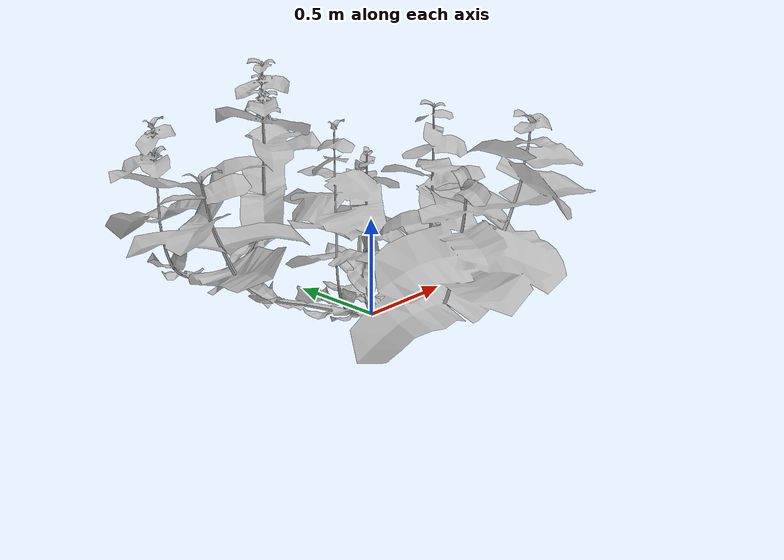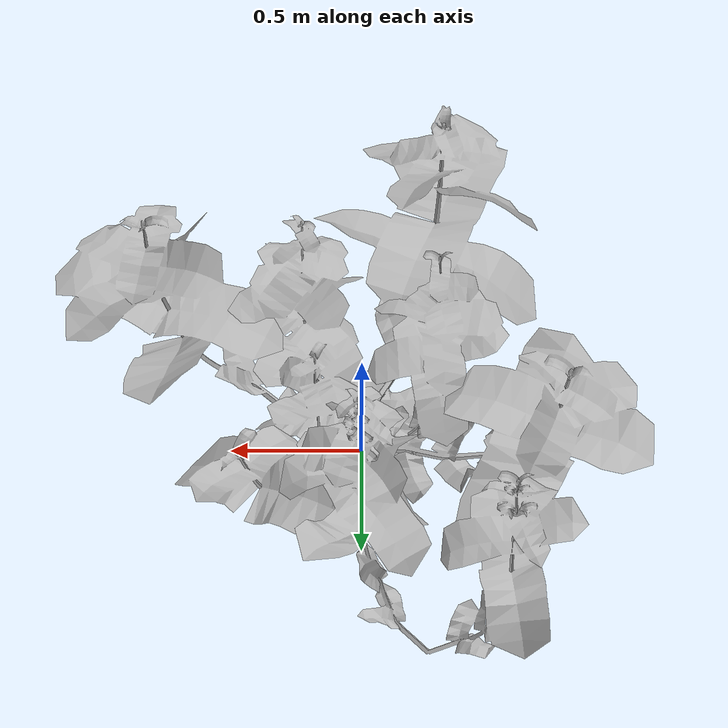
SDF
<?xml version="1.0" ?>
<sdf version="1.6">
  <model name="weed9">
    <static>1</static>
    <link name="weed9_1">

      <visual name="weed9_1">
        <geometry>
          <mesh>
            <uri>model://weed9/meshes/GC26_v1.obj</uri>
          </mesh>
        </geometry>
        <cast_shadows>1</cast_shadows>
      </visual>
        <pose>0 0 0 0 0 0</pose>
    </link>
    <link name="weed9_2">

      <visual name="weed9_2">
        <geometry>
          <mesh>
            <uri>model://weed9/meshes/GC26_v2.obj</uri>
          </mesh>
        </geometry>
        <cast_shadows>1</cast_shadows>
      </visual>
        <pose>-0.25 1 0 0 0 0</pose>
    </link>
    <link name="weed9_3">

      <visual name="weed9_3">
        <geometry>
          <mesh>
            <uri>model://weed9/meshes/GC26_v3.obj</uri>
          </mesh>
        </geometry>
        <cast_shadows>1</cast_shadows>
      </visual>
        <pose>0 0 0 0 0 0</pose>
    </link>
  </model>

</sdf>
